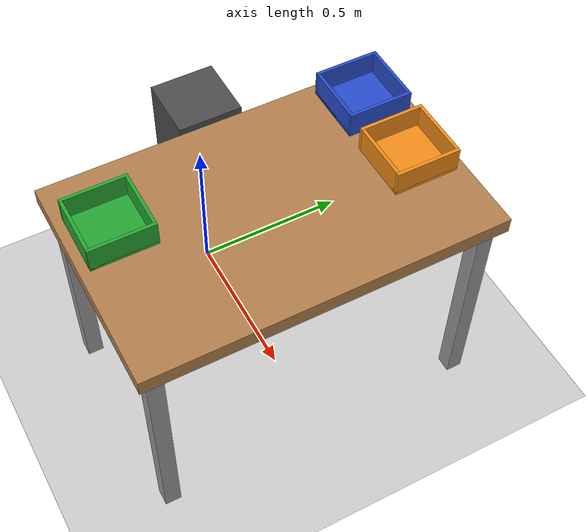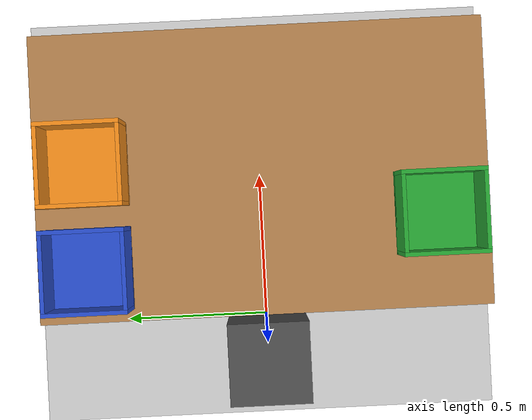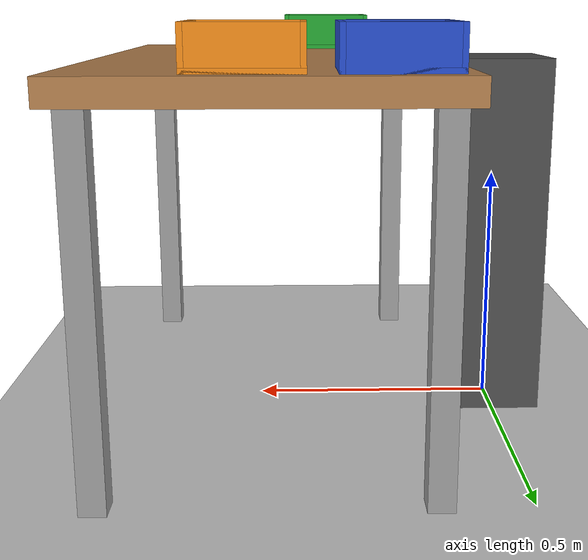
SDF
<sdf version="1.6">
 <world name="graspsort">
  <physics name="ode_1ms" type="ode" default="true">
   <max_step_size>0.001</max_step_size>
   <real_time_factor>1</real_time_factor>
   <real_time_update_rate>1000</real_time_update_rate>
   <ode>
    <solver><type>quick</type><iters>50</iters><sor>1.3</sor></solver>
    <constraints>
     <cfm>0</cfm>
     <erp>0.2</erp>
     <contact_max_correcting_vel>100</contact_max_correcting_vel>
     <contact_surface_layer>0.001</contact_surface_layer>
    </constraints>
   </ode>
  </physics>
  <scene><ambient>0.5 0.5 0.5 1</ambient><background>0.7 0.7 0.7 1</background><shadows>true</shadows></scene>
  <include><uri>model://sun</uri></include>
  <include><uri>model://ground_plane</uri></include>
  <light name="ceiling" type="point">
   <pose>0.47 0 2.6 0 0 0</pose>
   <diffuse>0.5 0.5 0.5 1</diffuse>
   <specular>0.1 0.1 0.1 1</specular>
   <attenuation>
    <range>10</range>
    <constant>0.6</constant>
    <linear>0.05</linear>
    <quadratic>0.0</quadratic>
   </attenuation>
   <cast_shadows>false</cast_shadows>
  </light>
  <light name="fill" type="directional">
   <pose>2.5 0 3 0 0 0</pose>
   <diffuse>0.6 0.6 0.6 1</diffuse>
   <specular>0.05 0.05 0.05 1</specular>
   <direction>-0.8 0.2 -0.6</direction>
   <cast_shadows>false</cast_shadows>
  </light>
  <plugin name="gazebo_ros_state" filename="libgazebo_ros_state.so">
   <ros><namespace>/gazebo</namespace></ros>
   <update_rate>20.0</update_rate>
  </plugin>
  <plugin name="graspsort_attach" filename="libgraspsort_attach.so">
   <joint_type>fixed</joint_type>
   <attach_service>/attach</attach_service>
   <detach_service>/detach</detach_service>
   <max_attach_distance>0.02</max_attach_distance>
  </plugin>
  <model name="pedestal">
   <static>true</static>
   <pose>0 0 0.75 0 0 0</pose>
   <link name="link">
    <collision name="c">
     <pose>0 0 -0.375 0 0 0</pose>
     <geometry><box><size>0.20 0.20 0.75</size></box></geometry>
    </collision>
    <visual name="v">
     <pose>0 0 -0.375 0 0 0</pose>
     <geometry><box><size>0.20 0.20 0.75</size></box></geometry>
     <material>
      <script><uri>file://media/materials/scripts/gazebo.material</uri><name>Gazebo/DarkGrey</name></script>
     </material>
    </visual>
   </link>
  </model>
  <model name="table">
   <static>true</static>
   <pose>0.47 0 0.75 0 0 0</pose>
   <link name="link">
    <collision name="top_c">
     <pose>0 0 -0.025 0 0 0</pose>
     <geometry><box><size>0.70 1.10 0.05</size></box></geometry>
    </collision>
    <visual name="top_v">
     <pose>0 0 -0.025 0 0 0</pose>
     <geometry><box><size>0.70 1.10 0.05</size></box></geometry>
     <material>
      <script><uri>file://media/materials/scripts/gazebo.material</uri><name>Gazebo/Wood</name></script>
     </material>
    </visual>
    <collision name="leg_1_c">
     <pose>0.30 0.50 -0.40 0 0 0</pose>
     <geometry><box><size>0.05 0.05 0.70</size></box></geometry>
    </collision>
    <visual name="leg_1_v">
     <pose>0.30 0.50 -0.40 0 0 0</pose>
     <geometry><box><size>0.05 0.05 0.70</size></box></geometry>
     <material>
      <script><uri>file://media/materials/scripts/gazebo.material</uri><name>Gazebo/Grey</name></script>
     </material>
    </visual>
    <collision name="leg_2_c">
     <pose>0.30 -0.50 -0.40 0 0 0</pose>
     <geometry><box><size>0.05 0.05 0.70</size></box></geometry>
    </collision>
    <visual name="leg_2_v">
     <pose>0.30 -0.50 -0.40 0 0 0</pose>
     <geometry><box><size>0.05 0.05 0.70</size></box></geometry>
     <material>
      <script><uri>file://media/materials/scripts/gazebo.material</uri><name>Gazebo/Grey</name></script>
     </material>
    </visual>
    <collision name="leg_3_c">
     <pose>-0.30 0.50 -0.40 0 0 0</pose>
     <geometry><box><size>0.05 0.05 0.70</size></box></geometry>
    </collision>
    <visual name="leg_3_v">
     <pose>-0.30 0.50 -0.40 0 0 0</pose>
     <geometry><box><size>0.05 0.05 0.70</size></box></geometry>
     <material>
      <script><uri>file://media/materials/scripts/gazebo.material</uri><name>Gazebo/Grey</name></script>
     </material>
    </visual>
    <collision name="leg_4_c">
     <pose>-0.30 -0.50 -0.40 0 0 0</pose>
     <geometry><box><size>0.05 0.05 0.70</size></box></geometry>
    </collision>
    <visual name="leg_4_v">
     <pose>-0.30 -0.50 -0.40 0 0 0</pose>
     <geometry><box><size>0.05 0.05 0.70</size></box></geometry>
     <material>
      <script><uri>file://media/materials/scripts/gazebo.material</uri><name>Gazebo/Grey</name></script>
     </material>
    </visual>
   </link>
  </model>
  <model name="bin_cup">
   <static>true</static>
   <pose>0.25 0.42 0.75 0 0 0</pose>
   <link name="link">
    <collision name="floor_c">
     <pose>0 0 0.005 0 0 0</pose>
     <geometry><box><size>0.20 0.20 0.01</size></box></geometry>
    </collision>
    <visual name="floor_v">
     <pose>0 0 0.005 0 0 0</pose>
     <geometry><box><size>0.20 0.20 0.01</size></box></geometry>
     <material>
      <script><uri>file://media/materials/scripts/gazebo.material</uri><name>Gazebo/Blue</name></script>
     </material>
    </visual>
    <collision name="wall_px_c">
     <pose>0.095 0 0.04 0 0 0</pose>
     <geometry><box><size>0.01 0.20 0.08</size></box></geometry>
    </collision>
    <visual name="wall_px_v">
     <pose>0.095 0 0.04 0 0 0</pose>
     <geometry><box><size>0.01 0.20 0.08</size></box></geometry>
     <material>
      <script><uri>file://media/materials/scripts/gazebo.material</uri><name>Gazebo/Blue</name></script>
     </material>
    </visual>
    <collision name="wall_nx_c">
     <pose>-0.095 0 0.04 0 0 0</pose>
     <geometry><box><size>0.01 0.20 0.08</size></box></geometry>
    </collision>
    <visual name="wall_nx_v">
     <pose>-0.095 0 0.04 0 0 0</pose>
     <geometry><box><size>0.01 0.20 0.08</size></box></geometry>
     <material>
      <script><uri>file://media/materials/scripts/gazebo.material</uri><name>Gazebo/Blue</name></script>
     </material>
    </visual>
    <collision name="wall_py_c">
     <pose>0 0.095 0.04 0 0 0</pose>
     <geometry><box><size>0.18 0.01 0.08</size></box></geometry>
    </collision>
    <visual name="wall_py_v">
     <pose>0 0.095 0.04 0 0 0</pose>
     <geometry><box><size>0.18 0.01 0.08</size></box></geometry>
     <material>
      <script><uri>file://media/materials/scripts/gazebo.material</uri><name>Gazebo/Blue</name></script>
     </material>
    </visual>
    <collision name="wall_ny_c">
     <pose>0 -0.095 0.04 0 0 0</pose>
     <geometry><box><size>0.18 0.01 0.08</size></box></geometry>
    </collision>
    <visual name="wall_ny_v">
     <pose>0 -0.095 0.04 0 0 0</pose>
     <geometry><box><size>0.18 0.01 0.08</size></box></geometry>
     <material>
      <script><uri>file://media/materials/scripts/gazebo.material</uri><name>Gazebo/Blue</name></script>
     </material>
    </visual>
   </link>
  </model>
  <model name="bin_bottle">
   <static>true</static>
   <pose>0.35 -0.42 0.75 0 0 0</pose>
   <link name="link">
    <collision name="floor_c">
     <pose>0 0 0.005 0 0 0</pose>
     <geometry><box><size>0.20 0.20 0.01</size></box></geometry>
    </collision>
    <visual name="floor_v">
     <pose>0 0 0.005 0 0 0</pose>
     <geometry><box><size>0.20 0.20 0.01</size></box></geometry>
     <material>
      <script><uri>file://media/materials/scripts/gazebo.material</uri><name>Gazebo/Green</name></script>
     </material>
    </visual>
    <collision name="wall_px_c">
     <pose>0.095 0 0.04 0 0 0</pose>
     <geometry><box><size>0.01 0.20 0.08</size></box></geometry>
    </collision>
    <visual name="wall_px_v">
     <pose>0.095 0 0.04 0 0 0</pose>
     <geometry><box><size>0.01 0.20 0.08</size></box></geometry>
     <material>
      <script><uri>file://media/materials/scripts/gazebo.material</uri><name>Gazebo/Green</name></script>
     </material>
    </visual>
    <collision name="wall_nx_c">
     <pose>-0.095 0 0.04 0 0 0</pose>
     <geometry><box><size>0.01 0.20 0.08</size></box></geometry>
    </collision>
    <visual name="wall_nx_v">
     <pose>-0.095 0 0.04 0 0 0</pose>
     <geometry><box><size>0.01 0.20 0.08</size></box></geometry>
     <material>
      <script><uri>file://media/materials/scripts/gazebo.material</uri><name>Gazebo/Green</name></script>
     </material>
    </visual>
    <collision name="wall_py_c">
     <pose>0 0.095 0.04 0 0 0</pose>
     <geometry><box><size>0.18 0.01 0.08</size></box></geometry>
    </collision>
    <visual name="wall_py_v">
     <pose>0 0.095 0.04 0 0 0</pose>
     <geometry><box><size>0.18 0.01 0.08</size></box></geometry>
     <material>
      <script><uri>file://media/materials/scripts/gazebo.material</uri><name>Gazebo/Green</name></script>
     </material>
    </visual>
    <collision name="wall_ny_c">
     <pose>0 -0.095 0.04 0 0 0</pose>
     <geometry><box><size>0.18 0.01 0.08</size></box></geometry>
    </collision>
    <visual name="wall_ny_v">
     <pose>0 -0.095 0.04 0 0 0</pose>
     <geometry><box><size>0.18 0.01 0.08</size></box></geometry>
     <material>
      <script><uri>file://media/materials/scripts/gazebo.material</uri><name>Gazebo/Green</name></script>
     </material>
    </visual>
   </link>
  </model>
  <model name="bin_ball">
   <static>true</static>
   <pose>0.50 0.42 0.75 0 0 0</pose>
   <link name="link">
    <collision name="floor_c">
     <pose>0 0 0.005 0 0 0</pose>
     <geometry><box><size>0.20 0.20 0.01</size></box></geometry>
    </collision>
    <visual name="floor_v">
     <pose>0 0 0.005 0 0 0</pose>
     <geometry><box><size>0.20 0.20 0.01</size></box></geometry>
     <material>
      <script><uri>file://media/materials/scripts/gazebo.material</uri><name>Gazebo/Orange</name></script>
     </material>
    </visual>
    <collision name="wall_px_c">
     <pose>0.095 0 0.04 0 0 0</pose>
     <geometry><box><size>0.01 0.20 0.08</size></box></geometry>
    </collision>
    <visual name="wall_px_v">
     <pose>0.095 0 0.04 0 0 0</pose>
     <geometry><box><size>0.01 0.20 0.08</size></box></geometry>
     <material>
      <script><uri>file://media/materials/scripts/gazebo.material</uri><name>Gazebo/Orange</name></script>
     </material>
    </visual>
    <collision name="wall_nx_c">
     <pose>-0.095 0 0.04 0 0 0</pose>
     <geometry><box><size>0.01 0.20 0.08</size></box></geometry>
    </collision>
    <visual name="wall_nx_v">
     <pose>-0.095 0 0.04 0 0 0</pose>
     <geometry><box><size>0.01 0.20 0.08</size></box></geometry>
     <material>
      <script><uri>file://media/materials/scripts/gazebo.material</uri><name>Gazebo/Orange</name></script>
     </material>
    </visual>
    <collision name="wall_py_c">
     <pose>0 0.095 0.04 0 0 0</pose>
     <geometry><box><size>0.18 0.01 0.08</size></box></geometry>
    </collision>
    <visual name="wall_py_v">
     <pose>0 0.095 0.04 0 0 0</pose>
     <geometry><box><size>0.18 0.01 0.08</size></box></geometry>
     <material>
      <script><uri>file://media/materials/scripts/gazebo.material</uri><name>Gazebo/Orange</name></script>
     </material>
    </visual>
    <collision name="wall_ny_c">
     <pose>0 -0.095 0.04 0 0 0</pose>
     <geometry><box><size>0.18 0.01 0.08</size></box></geometry>
    </collision>
    <visual name="wall_ny_v">
     <pose>0 -0.095 0.04 0 0 0</pose>
     <geometry><box><size>0.18 0.01 0.08</size></box></geometry>
     <material>
      <script><uri>file://media/materials/scripts/gazebo.material</uri><name>Gazebo/Orange</name></script>
     </material>
    </visual>
   </link>
  </model>
 </world>
</sdf>
